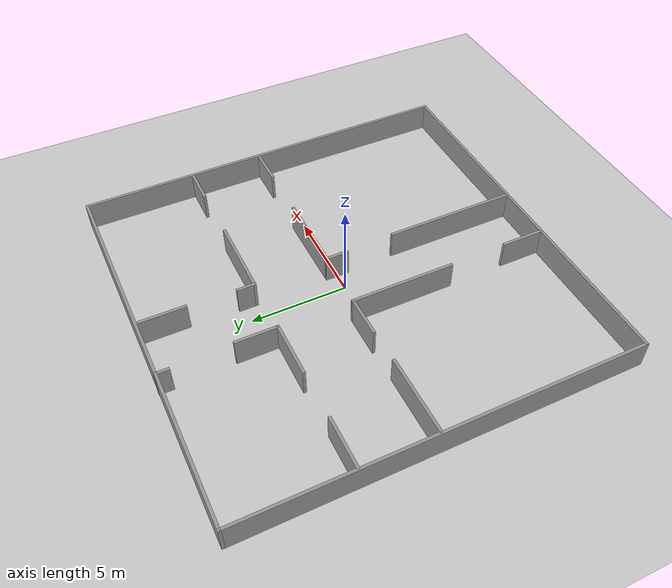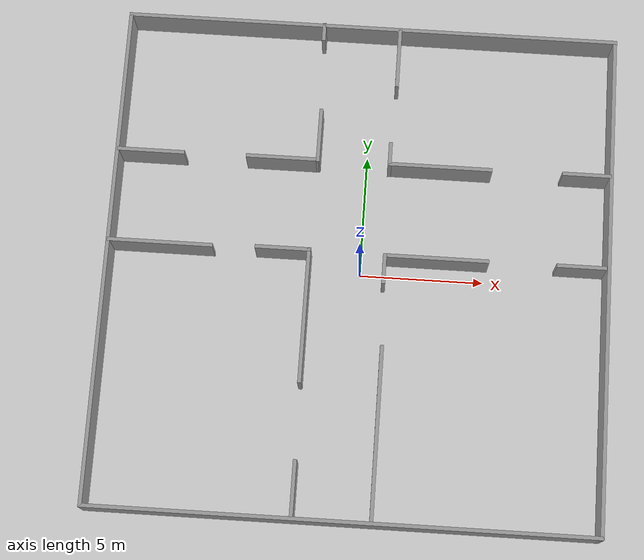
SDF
<sdf version="1.7">
 <world name="default">
  <light name="sun" type="directional">
   <pose>0 0 10 0 -0 0</pose>
   <diffuse>0.8 0.8 0.8 1</diffuse>
   <specular>0.2 0.2 0.2 1</specular>
   <attenuation>
    <range>1000</range>
    <constant>0.9</constant>
    <linear>0.01</linear>
    <quadratic>0.001</quadratic>
   </attenuation>
   <direction>-0.5 0.1 -0.9</direction>
   <spot><inner_angle>0</inner_angle><outer_angle>0</outer_angle><falloff>0</falloff></spot>
  </light>
  <model name="ground_plane">
   <static>1</static>
   <link name="link">
    <collision name="collision">
     <geometry><plane><normal>0 0 1</normal><size>100 100</size></plane></geometry>
     <surface><friction><ode><mu>100</mu><mu2>50</mu2></ode></friction></surface>
    </collision>
    <visual name="visual">
     <cast_shadows>0</cast_shadows>
     <geometry><plane><normal>0 0 1</normal><size>100 100</size></plane></geometry>
     <material>
      <script><uri>file://media/materials/scripts/gazebo.material</uri><name>Gazebo/Grey</name></script>
     </material>
    </visual>
   </link>
  </model>
  <gravity>0 0 -9.8</gravity>
  <magnetic_field>6e-06 2.3e-05 -4.2e-05</magnetic_field>
  <atmosphere type="adiabatic"/>
  <physics type="ode">
   <max_step_size>0.001</max_step_size>
   <real_time_factor>1</real_time_factor>
   <real_time_update_rate>1000</real_time_update_rate>
  </physics>
  <scene><ambient>0.4 0.4 0.4 1</ambient><background>0.7 0.7 0.7 1</background><shadows>1</shadows></scene>
  <audio><device>default</device></audio>
  <spherical_coordinates>
   <surface_model>EARTH_WGS84</surface_model>
   <latitude_deg>0</latitude_deg>
   <longitude_deg>0</longitude_deg>
   <elevation>0</elevation>
   <heading_deg>0</heading_deg>
  </spherical_coordinates>
  <model name="Untitled">
   <pose>-0.116 0.071 0 0 -0 0</pose>
   <link name="Wall_27">
    <collision name="Wall_27_Collision">
     <geometry><box><size>20.5 0.15 1.5</size></box></geometry>
     <pose>0 0 0.75 0 -0 0</pose>
    </collision>
    <visual name="Wall_27_Visual">
     <pose>0 0 0.75 0 -0 0</pose>
     <geometry><box><size>20.5 0.15 1.5</size></box></geometry>
     <material>
      <script><uri>file://media/materials/scripts/gazebo.material</uri><name>Gazebo/Grey</name></script>
      <ambient>1 1 1 1</ambient>
     </material>
     <meta><layer>0</layer></meta>
    </visual>
    <pose>-10.05 -0.011 0 0 -0 -1.5708</pose>
   </link>
   <link name="Wall_28">
    <collision name="Wall_28_Collision">
     <geometry><box><size>20.25 0.15 1.5</size></box></geometry>
     <pose>0 0 0.75 0 -0 0</pose>
    </collision>
    <visual name="Wall_28_Visual">
     <pose>0 0 0.75 0 -0 0</pose>
     <geometry><box><size>20.25 0.15 1.5</size></box></geometry>
     <material>
      <script><uri>file://media/materials/scripts/gazebo.material</uri><name>Gazebo/Grey</name></script>
      <ambient>1 1 1 1</ambient>
     </material>
     <meta><layer>0</layer></meta>
    </visual>
    <pose>0 -10.186 0 0 -0 0</pose>
   </link>
   <link name="Wall_29">
    <collision name="Wall_29_Collision">
     <geometry><box><size>20.5 0.15 1.5</size></box></geometry>
     <pose>0 0 0.75 0 -0 0</pose>
    </collision>
    <visual name="Wall_29_Visual">
     <pose>0 0 0.75 0 -0 0</pose>
     <geometry><box><size>20.5 0.15 1.5</size></box></geometry>
     <material>
      <script><uri>file://media/materials/scripts/gazebo.material</uri><name>Gazebo/Grey</name></script>
      <ambient>1 1 1 1</ambient>
     </material>
     <meta><layer>0</layer></meta>
    </visual>
    <pose>10.05 -0.011 0 0 -0 1.5708</pose>
   </link>
   <link name="Wall_30">
    <collision name="Wall_30_Collision">
     <geometry><box><size>20.25 0.15 1.5</size></box></geometry>
     <pose>0 0 0.75 0 -0 0</pose>
    </collision>
    <visual name="Wall_30_Visual">
     <pose>0 0 0.75 0 -0 0</pose>
     <geometry><box><size>20.25 0.15 1.5</size></box></geometry>
     <material>
      <script><uri>file://media/materials/scripts/gazebo.material</uri><name>Gazebo/Grey</name></script>
      <ambient>1 1 1 1</ambient>
     </material>
     <meta><layer>0</layer></meta>
    </visual>
    <pose>0 10.164 0 0 -0 3.14159</pose>
   </link>
   <link name="Wall_32">
    <collision name="Wall_32_Collision">
     <geometry><box><size>2.75 0.15 1.5</size></box></geometry>
     <pose>0 0 0.75 0 -0 0</pose>
    </collision>
    <visual name="Wall_32_Visual">
     <pose>0 0 0.75 0 -0 0</pose>
     <geometry><box><size>2.75 0.15 1.5</size></box></geometry>
     <material>
      <script><uri>file://media/materials/scripts/gazebo.material</uri><name>Gazebo/Grey</name></script>
      <ambient>1 1 1 1</ambient>
     </material>
     <meta><layer>0</layer></meta>
    </visual>
    <pose>-8.681 4.285 0 0 -0 0</pose>
   </link>
   <link name="Wall_34">
    <collision name="Wall_34_Collision">
     <geometry><box><size>3 0.15 1.5</size></box></geometry>
     <pose>0 0 0.75 0 -0 0</pose>
    </collision>
    <visual name="Wall_34_Visual">
     <pose>0 0 0.75 0 -0 0</pose>
     <geometry><box><size>3 0.15 1.5</size></box></geometry>
     <material>
      <script><uri>file://media/materials/scripts/gazebo.material</uri><name>Gazebo/Grey</name></script>
      <ambient>1 1 1 1</ambient>
     </material>
     <meta><layer>0</layer></meta>
    </visual>
    <pose>-3.304 4.32 0 0 -0 0</pose>
   </link>
   <link name="Wall_35">
    <collision name="Wall_35_Collision">
     <geometry><box><size>2.25 0.15 1.5</size></box></geometry>
     <pose>0 0 0.75 0 -0 0</pose>
    </collision>
    <visual name="Wall_35_Visual">
     <pose>0 0 0.75 0 -0 0</pose>
     <geometry><box><size>2.25 0.15 1.5</size></box></geometry>
     <material>
      <script><uri>file://media/materials/scripts/gazebo.material</uri><name>Gazebo/Grey</name></script>
      <ambient>1 1 1 1</ambient>
     </material>
     <meta><layer>0</layer></meta>
    </visual>
    <pose>-1.879 5.37 0 0 -0 1.5708</pose>
   </link>
   <link name="Wall_37">
    <collision name="Wall_37_Collision">
     <geometry><box><size>4.25 0.15 1.5</size></box></geometry>
     <pose>0 0 0.75 0 -0 0</pose>
    </collision>
    <visual name="Wall_37_Visual">
     <pose>0 0 0.75 0 -0 0</pose>
     <geometry><box><size>4.25 0.15 1.5</size></box></geometry>
     <material>
      <script><uri>file://media/materials/scripts/gazebo.material</uri><name>Gazebo/Grey</name></script>
      <ambient>1 1 1 1</ambient>
     </material>
     <meta><layer>0</layer></meta>
    </visual>
    <pose>-7.966 0.459 0 0 -0 0</pose>
   </link>
   <link name="Wall_39">
    <collision name="Wall_39_Collision">
     <geometry><box><size>2.25 0.15 1.5</size></box></geometry>
     <pose>0 0 0.75 0 -0 0</pose>
    </collision>
    <visual name="Wall_39_Visual">
     <pose>0 0 0.75 0 -0 0</pose>
     <geometry><box><size>2.25 0.15 1.5</size></box></geometry>
     <material>
      <script><uri>file://media/materials/scripts/gazebo.material</uri><name>Gazebo/Grey</name></script>
      <ambient>1 1 1 1</ambient>
     </material>
     <meta><layer>0</layer></meta>
    </visual>
    <pose>-3.018 0.529 0 0 -0 0</pose>
   </link>
   <link name="Wall_40">
    <collision name="Wall_40_Collision">
     <geometry><box><size>5.5 0.15 1.5</size></box></geometry>
     <pose>0 0 0.75 0 -0 0</pose>
    </collision>
    <visual name="Wall_40_Visual">
     <pose>0 0 0.75 0 -0 0</pose>
     <geometry><box><size>5.5 0.15 1.5</size></box></geometry>
     <material>
      <script><uri>file://media/materials/scripts/gazebo.material</uri><name>Gazebo/Grey</name></script>
      <ambient>1 1 1 1</ambient>
     </material>
     <meta><layer>0</layer></meta>
    </visual>
    <pose>-1.968 -2.146 0 0 -0 -1.5708</pose>
   </link>
   <link name="Wall_43">
    <collision name="Wall_43_Collision">
     <geometry><box><size>2.25 0.15 1.5</size></box></geometry>
     <pose>0 0 0.75 0 -0 0</pose>
    </collision>
    <visual name="Wall_43_Visual">
     <pose>0 0 0.75 0 -0 0</pose>
     <geometry><box><size>2.25 0.15 1.5</size></box></geometry>
     <material>
      <script><uri>file://media/materials/scripts/gazebo.material</uri><name>Gazebo/Grey</name></script>
      <ambient>1 1 1 1</ambient>
     </material>
     <meta><layer>0</layer></meta>
    </visual>
    <pose>-1.911 -9.03 0 0 -0 1.5708</pose>
   </link>
   <link name="Wall_45">
    <collision name="Wall_45_Collision">
     <geometry><box><size>7 0.15 1.5</size></box></geometry>
     <pose>0 0 0.75 0 -0 0</pose>
    </collision>
    <visual name="Wall_45_Visual">
     <pose>0 0 0.75 0 -0 0</pose>
     <geometry><box><size>7 0.15 1.5</size></box></geometry>
     <material>
      <script><uri>file://media/materials/scripts/gazebo.material</uri><name>Gazebo/Grey</name></script>
      <ambient>1 1 1 1</ambient>
     </material>
     <meta><layer>0</layer></meta>
    </visual>
    <pose>1.184 -6.687 0 0 -0 -1.5708</pose>
   </link>
   <link name="Wall_47">
    <collision name="Wall_47_Collision">
     <geometry><box><size>1.25 0.15 1.5</size></box></geometry>
     <pose>0 0 0.75 0 -0 0</pose>
    </collision>
    <visual name="Wall_47_Visual">
     <pose>0 0 0.75 0 -0 0</pose>
     <geometry><box><size>1.25 0.15 1.5</size></box></geometry>
     <material>
      <script><uri>file://media/materials/scripts/gazebo.material</uri><name>Gazebo/Grey</name></script>
      <ambient>1 1 1 1</ambient>
     </material>
     <meta><layer>0</layer></meta>
    </visual>
    <pose>1.08 -0.069 0 0 -0 1.5708</pose>
   </link>
   <link name="Wall_48">
    <collision name="Wall_48_Collision">
     <geometry><box><size>4.25 0.15 1.5</size></box></geometry>
     <pose>0 0 0.75 0 -0 0</pose>
    </collision>
    <visual name="Wall_48_Visual">
     <pose>0 0 0.75 0 -0 0</pose>
     <geometry><box><size>4.25 0.15 1.5</size></box></geometry>
     <material>
      <script><uri>file://media/materials/scripts/gazebo.material</uri><name>Gazebo/Grey</name></script>
      <ambient>1 1 1 1</ambient>
     </material>
     <meta><layer>0</layer></meta>
    </visual>
    <pose>3.13 0.481 0 0 -0 0</pose>
   </link>
   <link name="Wall_50">
    <collision name="Wall_50_Collision">
     <geometry><box><size>2 0.15 1.5</size></box></geometry>
     <pose>0 0 0.75 0 -0 0</pose>
    </collision>
    <visual name="Wall_50_Visual">
     <pose>0 0 0.75 0 -0 0</pose>
     <geometry><box><size>2 0.15 1.5</size></box></geometry>
     <material>
      <script><uri>file://media/materials/scripts/gazebo.material</uri><name>Gazebo/Grey</name></script>
      <ambient>1 1 1 1</ambient>
     </material>
     <meta><layer>0</layer></meta>
    </visual>
    <pose>8.955 0.494 0 0 -0 3.14159</pose>
   </link>
   <link name="Wall_52">
    <collision name="Wall_52_Collision">
     <geometry><box><size>2.5 0.15 1.5</size></box></geometry>
     <pose>0 0 0.75 0 -0 0</pose>
    </collision>
    <visual name="Wall_52_Visual">
     <pose>0 0 0.75 0 -0 0</pose>
     <geometry><box><size>2.5 0.15 1.5</size></box></geometry>
     <material>
      <script><uri>file://media/materials/scripts/gazebo.material</uri><name>Gazebo/Grey</name></script>
      <ambient>1 1 1 1</ambient>
     </material>
     <meta><layer>0</layer></meta>
    </visual>
    <pose>1.147 8.918 0 0 -0 -1.5708</pose>
   </link>
   <link name="Wall_54">
    <collision name="Wall_54_Collision">
     <geometry><box><size>4.25 0.15 1.5</size></box></geometry>
     <pose>0 0 0.75 0 -0 0</pose>
    </collision>
    <visual name="Wall_54_Visual">
     <pose>0 0 0.75 0 -0 0</pose>
     <geometry><box><size>4.25 0.15 1.5</size></box></geometry>
     <material>
      <script><uri>file://media/materials/scripts/gazebo.material</uri><name>Gazebo/Grey</name></script>
      <ambient>1 1 1 1</ambient>
     </material>
     <meta><layer>0</layer></meta>
    </visual>
    <pose>3.093 4.319 0 0 -0 0</pose>
   </link>
   <link name="Wall_56">
    <collision name="Wall_56_Collision">
     <geometry><box><size>2 0.15 1.5</size></box></geometry>
     <pose>0 0 0.75 0 -0 0</pose>
    </collision>
    <visual name="Wall_56_Visual">
     <pose>0 0 0.75 0 -0 0</pose>
     <geometry><box><size>2 0.15 1.5</size></box></geometry>
     <material>
      <script><uri>file://media/materials/scripts/gazebo.material</uri><name>Gazebo/Grey</name></script>
      <ambient>1 1 1 1</ambient>
     </material>
     <meta><layer>0</layer></meta>
    </visual>
    <pose>9.064 4.354 0 0 -0 0</pose>
   </link>
   <link name="Wall_58">
    <collision name="Wall_58_Collision">
     <geometry><box><size>1 0.15 1.5</size></box></geometry>
     <pose>0 0 0.75 0 -0 0</pose>
    </collision>
    <visual name="Wall_58_Visual">
     <pose>0 0 0.75 0 -0 0</pose>
     <geometry><box><size>1 0.15 1.5</size></box></geometry>
     <material>
      <script><uri>file://media/materials/scripts/gazebo.material</uri><name>Gazebo/Grey</name></script>
      <ambient>1 1 1 1</ambient>
     </material>
     <meta><layer>0</layer></meta>
    </visual>
    <pose>1.043 4.744 0 0 -0 1.5708</pose>
   </link>
   <link name="Wall_60">
    <collision name="Wall_60_Collision">
     <geometry><box><size>0.75 0.15 1.5</size></box></geometry>
     <pose>0 0 0.75 0 -0 0</pose>
    </collision>
    <visual name="Wall_60_Visual">
     <pose>0 0 0.75 0 -0 0</pose>
     <geometry><box><size>0.75 0.15 1.5</size></box></geometry>
     <material>
      <script><uri>file://media/materials/scripts/gazebo.material</uri><name>Gazebo/Grey</name></script>
      <ambient>1 1 1 1</ambient>
     </material>
     <meta><layer>0</layer></meta>
    </visual>
    <pose>-1.999 9.886 0 0 -0 -1.5708</pose>
   </link>
   <static>1</static>
  </model>
 </world>
</sdf>
